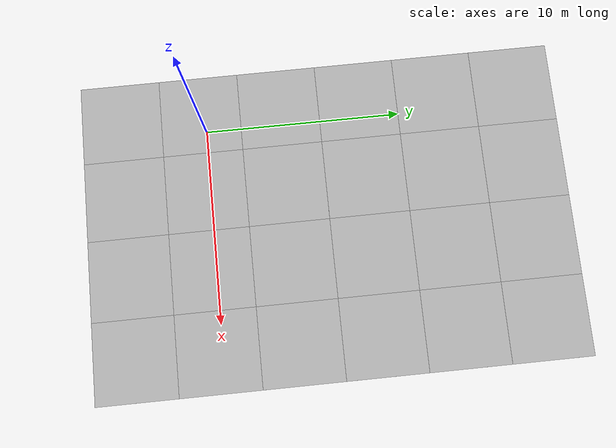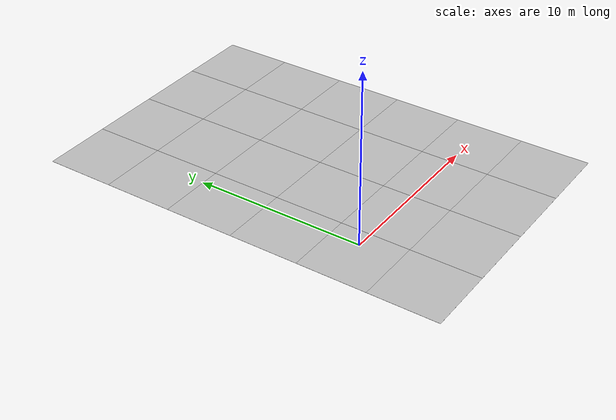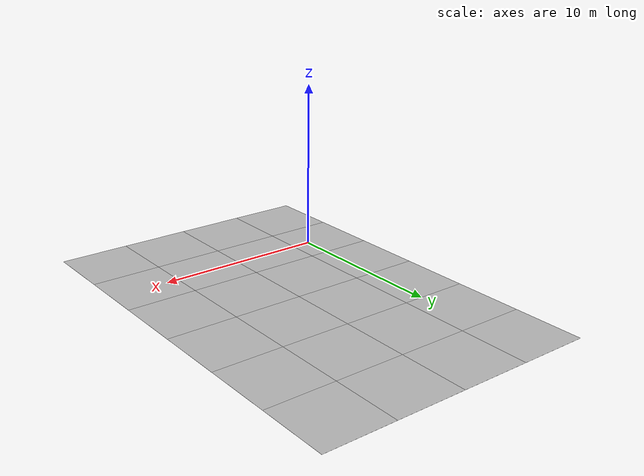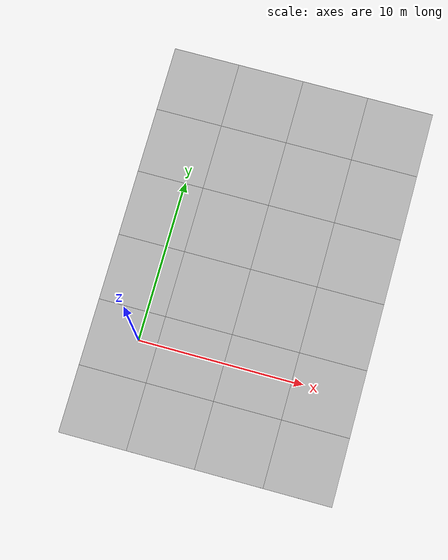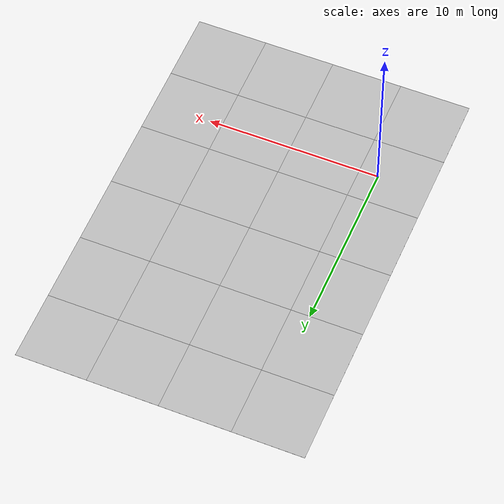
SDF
<sdf version="1.6">
 <world name="default">
  <light name="sun_light" type="directional">
   <pose>0 0 10 0 -0 0</pose>
   <diffuse>0.5 0.5 0.5 1</diffuse>
   <specular>0.1 0.1 0.1 1</specular>
   <direction>0.1 0.1 -0.9</direction>
   <attenuation>
    <range>20</range>
    <constant>0.5</constant>
    <linear>0.01</linear>
    <quadratic>0.001</quadratic>
   </attenuation>
  </light>
  <model name="Tile/0-0">
   <static>1</static>
   <link name="link">
    <collision name="collision">
     <geometry><plane><normal>0 0 1</normal><size>4.096 4.096</size></plane></geometry>
     <surface><friction><ode><mu>100</mu><mu2>50</mu2></ode></friction></surface>
    </collision>
    <visual name="visual">
     <cast_shadows>0</cast_shadows>
     <geometry><plane><normal>0 0 1</normal><size>4.096 4.096</size></plane></geometry>
     <material>
      <script>
       <uri>file://materials/scripts</uri>
       <uri>file://materials/textures</uri>
       <name>Tile/5eab350b8220ac9944dbdfa4ac3288c7c17e24c3bf5df0dfcf6173d64dae00a1</name>
      </script>
     </material>
    </visual>
   </link>
   <pose>-0.952 -4.351995000010415 0 0 -0 0</pose>
  </model>
  <model name="Tile/0-1">
   <static>1</static>
   <link name="link">
    <collision name="collision">
     <geometry><plane><normal>0 0 1</normal><size>4.096 4.096</size></plane></geometry>
     <surface><friction><ode><mu>100</mu><mu2>50</mu2></ode></friction></surface>
    </collision>
    <visual name="visual">
     <cast_shadows>0</cast_shadows>
     <geometry><plane><normal>0 0 1</normal><size>4.096 4.096</size></plane></geometry>
     <material>
      <script>
       <uri>file://materials/scripts</uri>
       <uri>file://materials/textures</uri>
       <name>Tile/fed8ceb758e9ae2ef714064cb33e8129fa80b4c62d279d0a538886c799653a61</name>
      </script>
     </material>
    </visual>
   </link>
   <pose>-0.952 -0.2559950000104152 0 0 -0 0</pose>
  </model>
  <model name="Tile/0-2">
   <static>1</static>
   <link name="link">
    <collision name="collision">
     <geometry><plane><normal>0 0 1</normal><size>4.096 4.096</size></plane></geometry>
     <surface><friction><ode><mu>100</mu><mu2>50</mu2></ode></friction></surface>
    </collision>
    <visual name="visual">
     <cast_shadows>0</cast_shadows>
     <geometry><plane><normal>0 0 1</normal><size>4.096 4.096</size></plane></geometry>
     <material>
      <script>
       <uri>file://materials/scripts</uri>
       <uri>file://materials/textures</uri>
       <name>Tile/5eab350b8220ac9944dbdfa4ac3288c7c17e24c3bf5df0dfcf6173d64dae00a1</name>
      </script>
     </material>
    </visual>
   </link>
   <pose>-0.952 3.840004999989585 0 0 -0 0</pose>
  </model>
  <model name="Tile/0-3">
   <static>1</static>
   <link name="link">
    <collision name="collision">
     <geometry><plane><normal>0 0 1</normal><size>4.096 4.096</size></plane></geometry>
     <surface><friction><ode><mu>100</mu><mu2>50</mu2></ode></friction></surface>
    </collision>
    <visual name="visual">
     <cast_shadows>0</cast_shadows>
     <geometry><plane><normal>0 0 1</normal><size>4.096 4.096</size></plane></geometry>
     <material>
      <script>
       <uri>file://materials/scripts</uri>
       <uri>file://materials/textures</uri>
       <name>Tile/5eab350b8220ac9944dbdfa4ac3288c7c17e24c3bf5df0dfcf6173d64dae00a1</name>
      </script>
     </material>
    </visual>
   </link>
   <pose>-0.952 7.936004999989585 0 0 -0 0</pose>
  </model>
  <model name="Tile/0-4">
   <static>1</static>
   <link name="link">
    <collision name="collision">
     <geometry><plane><normal>0 0 1</normal><size>4.096 4.096</size></plane></geometry>
     <surface><friction><ode><mu>100</mu><mu2>50</mu2></ode></friction></surface>
    </collision>
    <visual name="visual">
     <cast_shadows>0</cast_shadows>
     <geometry><plane><normal>0 0 1</normal><size>4.096 4.096</size></plane></geometry>
     <material>
      <script>
       <uri>file://materials/scripts</uri>
       <uri>file://materials/textures</uri>
       <name>Tile/5eab350b8220ac9944dbdfa4ac3288c7c17e24c3bf5df0dfcf6173d64dae00a1</name>
      </script>
     </material>
    </visual>
   </link>
   <pose>-0.952 12.032004999989583 0 0 -0 0</pose>
  </model>
  <model name="Tile/0-5">
   <static>1</static>
   <link name="link">
    <collision name="collision">
     <geometry><plane><normal>0 0 1</normal><size>4.096 4.096</size></plane></geometry>
     <surface><friction><ode><mu>100</mu><mu2>50</mu2></ode></friction></surface>
    </collision>
    <visual name="visual">
     <cast_shadows>0</cast_shadows>
     <geometry><plane><normal>0 0 1</normal><size>4.096 4.096</size></plane></geometry>
     <material>
      <script>
       <uri>file://materials/scripts</uri>
       <uri>file://materials/textures</uri>
       <name>Tile/5eab350b8220ac9944dbdfa4ac3288c7c17e24c3bf5df0dfcf6173d64dae00a1</name>
      </script>
     </material>
    </visual>
   </link>
   <pose>-0.952 16.128004999989585 0 0 -0 0</pose>
  </model>
  <model name="Tile/1-0">
   <static>1</static>
   <link name="link">
    <collision name="collision">
     <geometry><plane><normal>0 0 1</normal><size>4.096 4.096</size></plane></geometry>
     <surface><friction><ode><mu>100</mu><mu2>50</mu2></ode></friction></surface>
    </collision>
    <visual name="visual">
     <cast_shadows>0</cast_shadows>
     <geometry><plane><normal>0 0 1</normal><size>4.096 4.096</size></plane></geometry>
     <material>
      <script>
       <uri>file://materials/scripts</uri>
       <uri>file://materials/textures</uri>
       <name>Tile/80c9ac313d14950fa45937d7bab71c2548d8a7fa508af37890061cd94d0c8b30</name>
      </script>
     </material>
    </visual>
   </link>
   <pose>3.144 -4.351995000010415 0 0 -0 0</pose>
  </model>
  <model name="Tile/1-1">
   <static>1</static>
   <link name="link">
    <collision name="collision">
     <geometry><plane><normal>0 0 1</normal><size>4.096 4.096</size></plane></geometry>
     <surface><friction><ode><mu>100</mu><mu2>50</mu2></ode></friction></surface>
    </collision>
    <visual name="visual">
     <cast_shadows>0</cast_shadows>
     <geometry><plane><normal>0 0 1</normal><size>4.096 4.096</size></plane></geometry>
     <material>
      <script>
       <uri>file://materials/scripts</uri>
       <uri>file://materials/textures</uri>
       <name>Tile/779953579d50c1c52a462a438a54e390c2d343d3633d80fafb56ae08866e7013</name>
      </script>
     </material>
    </visual>
   </link>
   <pose>3.144 -0.2559950000104152 0 0 -0 0</pose>
  </model>
  <model name="Tile/1-2">
   <static>1</static>
   <link name="link">
    <collision name="collision">
     <geometry><plane><normal>0 0 1</normal><size>4.096 4.096</size></plane></geometry>
     <surface><friction><ode><mu>100</mu><mu2>50</mu2></ode></friction></surface>
    </collision>
    <visual name="visual">
     <cast_shadows>0</cast_shadows>
     <geometry><plane><normal>0 0 1</normal><size>4.096 4.096</size></plane></geometry>
     <material>
      <script>
       <uri>file://materials/scripts</uri>
       <uri>file://materials/textures</uri>
       <name>Tile/5eab350b8220ac9944dbdfa4ac3288c7c17e24c3bf5df0dfcf6173d64dae00a1</name>
      </script>
     </material>
    </visual>
   </link>
   <pose>3.144 3.840004999989585 0 0 -0 0</pose>
  </model>
  <model name="Tile/1-3">
   <static>1</static>
   <link name="link">
    <collision name="collision">
     <geometry><plane><normal>0 0 1</normal><size>4.096 4.096</size></plane></geometry>
     <surface><friction><ode><mu>100</mu><mu2>50</mu2></ode></friction></surface>
    </collision>
    <visual name="visual">
     <cast_shadows>0</cast_shadows>
     <geometry><plane><normal>0 0 1</normal><size>4.096 4.096</size></plane></geometry>
     <material>
      <script>
       <uri>file://materials/scripts</uri>
       <uri>file://materials/textures</uri>
       <name>Tile/78c6192153977c493e8e8cf1e5510c08c3a895f3ef0fc2eb406ff8d0e00aaa3d</name>
      </script>
     </material>
    </visual>
   </link>
   <pose>3.144 7.936004999989585 0 0 -0 0</pose>
  </model>
  <model name="Tile/1-4">
   <static>1</static>
   <link name="link">
    <collision name="collision">
     <geometry><plane><normal>0 0 1</normal><size>4.096 4.096</size></plane></geometry>
     <surface><friction><ode><mu>100</mu><mu2>50</mu2></ode></friction></surface>
    </collision>
    <visual name="visual">
     <cast_shadows>0</cast_shadows>
     <geometry><plane><normal>0 0 1</normal><size>4.096 4.096</size></plane></geometry>
     <material>
      <script>
       <uri>file://materials/scripts</uri>
       <uri>file://materials/textures</uri>
       <name>Tile/e2c312984eda9f9d6fd118285cbc715c9c527ee21140c240e35aadc51322324f</name>
      </script>
     </material>
    </visual>
   </link>
   <pose>3.144 12.032004999989583 0 0 -0 0</pose>
  </model>
  <model name="Tile/1-5">
   <static>1</static>
   <link name="link">
    <collision name="collision">
     <geometry><plane><normal>0 0 1</normal><size>4.096 4.096</size></plane></geometry>
     <surface><friction><ode><mu>100</mu><mu2>50</mu2></ode></friction></surface>
    </collision>
    <visual name="visual">
     <cast_shadows>0</cast_shadows>
     <geometry><plane><normal>0 0 1</normal><size>4.096 4.096</size></plane></geometry>
     <material>
      <script>
       <uri>file://materials/scripts</uri>
       <uri>file://materials/textures</uri>
       <name>Tile/5eab350b8220ac9944dbdfa4ac3288c7c17e24c3bf5df0dfcf6173d64dae00a1</name>
      </script>
     </material>
    </visual>
   </link>
   <pose>3.144 16.128004999989585 0 0 -0 0</pose>
  </model>
  <model name="Tile/2-0">
   <static>1</static>
   <link name="link">
    <collision name="collision">
     <geometry><plane><normal>0 0 1</normal><size>4.096 4.096</size></plane></geometry>
     <surface><friction><ode><mu>100</mu><mu2>50</mu2></ode></friction></surface>
    </collision>
    <visual name="visual">
     <cast_shadows>0</cast_shadows>
     <geometry><plane><normal>0 0 1</normal><size>4.096 4.096</size></plane></geometry>
     <material>
      <script>
       <uri>file://materials/scripts</uri>
       <uri>file://materials/textures</uri>
       <name>Tile/ec37ead0a48e41567a9845711afba1c48a59968617cc8ba52282ccf0dd1c8f93</name>
      </script>
     </material>
    </visual>
   </link>
   <pose>7.24 -4.351995000010415 0 0 -0 0</pose>
  </model>
  <model name="Tile/2-1">
   <static>1</static>
   <link name="link">
    <collision name="collision">
     <geometry><plane><normal>0 0 1</normal><size>4.096 4.096</size></plane></geometry>
     <surface><friction><ode><mu>100</mu><mu2>50</mu2></ode></friction></surface>
    </collision>
    <visual name="visual">
     <cast_shadows>0</cast_shadows>
     <geometry><plane><normal>0 0 1</normal><size>4.096 4.096</size></plane></geometry>
     <material>
      <script>
       <uri>file://materials/scripts</uri>
       <uri>file://materials/textures</uri>
       <name>Tile/eba263a1edb73555d051cc6ce74cc01796dcc9626f06cedf1253447478a77c70</name>
      </script>
     </material>
    </visual>
   </link>
   <pose>7.24 -0.2559950000104152 0 0 -0 0</pose>
  </model>
  <model name="Tile/2-2">
   <static>1</static>
   <link name="link">
    <collision name="collision">
     <geometry><plane><normal>0 0 1</normal><size>4.096 4.096</size></plane></geometry>
     <surface><friction><ode><mu>100</mu><mu2>50</mu2></ode></friction></surface>
    </collision>
    <visual name="visual">
     <cast_shadows>0</cast_shadows>
     <geometry><plane><normal>0 0 1</normal><size>4.096 4.096</size></plane></geometry>
     <material>
      <script>
       <uri>file://materials/scripts</uri>
       <uri>file://materials/textures</uri>
       <name>Tile/15e033ebabd2942a91eb05e16206df2f8a6c7e35bf94788f82abe14bb54e0f37</name>
      </script>
     </material>
    </visual>
   </link>
   <pose>7.24 3.840004999989585 0 0 -0 0</pose>
  </model>
  <model name="Tile/2-3">
   <static>1</static>
   <link name="link">
    <collision name="collision">
     <geometry><plane><normal>0 0 1</normal><size>4.096 4.096</size></plane></geometry>
     <surface><friction><ode><mu>100</mu><mu2>50</mu2></ode></friction></surface>
    </collision>
    <visual name="visual">
     <cast_shadows>0</cast_shadows>
     <geometry><plane><normal>0 0 1</normal><size>4.096 4.096</size></plane></geometry>
     <material>
      <script>
       <uri>file://materials/scripts</uri>
       <uri>file://materials/textures</uri>
       <name>Tile/2a85f88afed8bafbb9caf95114bead1ad8ab5266486e31519215ffdc75a5d5bb</name>
      </script>
     </material>
    </visual>
   </link>
   <pose>7.24 7.936004999989585 0 0 -0 0</pose>
  </model>
  <model name="Tile/2-4">
   <static>1</static>
   <link name="link">
    <collision name="collision">
     <geometry><plane><normal>0 0 1</normal><size>4.096 4.096</size></plane></geometry>
     <surface><friction><ode><mu>100</mu><mu2>50</mu2></ode></friction></surface>
    </collision>
    <visual name="visual">
     <cast_shadows>0</cast_shadows>
     <geometry><plane><normal>0 0 1</normal><size>4.096 4.096</size></plane></geometry>
     <material>
      <script>
       <uri>file://materials/scripts</uri>
       <uri>file://materials/textures</uri>
       <name>Tile/ef6991495462d2c2119d79b2becb67824d05bbd753897e6115c7134a660a4319</name>
      </script>
     </material>
    </visual>
   </link>
   <pose>7.24 12.032004999989583 0 0 -0 0</pose>
  </model>
  <model name="Tile/2-5">
   <static>1</static>
   <link name="link">
    <collision name="collision">
     <geometry><plane><normal>0 0 1</normal><size>4.096 4.096</size></plane></geometry>
     <surface><friction><ode><mu>100</mu><mu2>50</mu2></ode></friction></surface>
    </collision>
    <visual name="visual">
     <cast_shadows>0</cast_shadows>
     <geometry><plane><normal>0 0 1</normal><size>4.096 4.096</size></plane></geometry>
     <material>
      <script>
       <uri>file://materials/scripts</uri>
       <uri>file://materials/textures</uri>
       <name>Tile/5eab350b8220ac9944dbdfa4ac3288c7c17e24c3bf5df0dfcf6173d64dae00a1</name>
      </script>
     </material>
    </visual>
   </link>
   <pose>7.24 16.128004999989585 0 0 -0 0</pose>
  </model>
  <model name="Tile/3-0">
   <static>1</static>
   <link name="link">
    <collision name="collision">
     <geometry><plane><normal>0 0 1</normal><size>4.096 4.096</size></plane></geometry>
     <surface><friction><ode><mu>100</mu><mu2>50</mu2></ode></friction></surface>
    </collision>
    <visual name="visual">
     <cast_shadows>0</cast_shadows>
     <geometry><plane><normal>0 0 1</normal><size>4.096 4.096</size></plane></geometry>
     <material>
      <script>
       <uri>file://materials/scripts</uri>
       <uri>file://materials/textures</uri>
       <name>Tile/5eab350b8220ac9944dbdfa4ac3288c7c17e24c3bf5df0dfcf6173d64dae00a1</name>
      </script>
     </material>
    </visual>
   </link>
   <pose>11.336 -4.351995000010415 0 0 -0 0</pose>
  </model>
  <model name="Tile/3-1">
   <static>1</static>
   <link name="link">
    <collision name="collision">
     <geometry><plane><normal>0 0 1</normal><size>4.096 4.096</size></plane></geometry>
     <surface><friction><ode><mu>100</mu><mu2>50</mu2></ode></friction></surface>
    </collision>
    <visual name="visual">
     <cast_shadows>0</cast_shadows>
     <geometry><plane><normal>0 0 1</normal><size>4.096 4.096</size></plane></geometry>
     <material>
      <script>
       <uri>file://materials/scripts</uri>
       <uri>file://materials/textures</uri>
       <name>Tile/5eab350b8220ac9944dbdfa4ac3288c7c17e24c3bf5df0dfcf6173d64dae00a1</name>
      </script>
     </material>
    </visual>
   </link>
   <pose>11.336 -0.2559950000104152 0 0 -0 0</pose>
  </model>
  <model name="Tile/3-2">
   <static>1</static>
   <link name="link">
    <collision name="collision">
     <geometry><plane><normal>0 0 1</normal><size>4.096 4.096</size></plane></geometry>
     <surface><friction><ode><mu>100</mu><mu2>50</mu2></ode></friction></surface>
    </collision>
    <visual name="visual">
     <cast_shadows>0</cast_shadows>
     <geometry><plane><normal>0 0 1</normal><size>4.096 4.096</size></plane></geometry>
     <material>
      <script>
       <uri>file://materials/scripts</uri>
       <uri>file://materials/textures</uri>
       <name>Tile/5eab350b8220ac9944dbdfa4ac3288c7c17e24c3bf5df0dfcf6173d64dae00a1</name>
      </script>
     </material>
    </visual>
   </link>
   <pose>11.336 3.840004999989585 0 0 -0 0</pose>
  </model>
  <model name="Tile/3-3">
   <static>1</static>
   <link name="link">
    <collision name="collision">
     <geometry><plane><normal>0 0 1</normal><size>4.096 4.096</size></plane></geometry>
     <surface><friction><ode><mu>100</mu><mu2>50</mu2></ode></friction></surface>
    </collision>
    <visual name="visual">
     <cast_shadows>0</cast_shadows>
     <geometry><plane><normal>0 0 1</normal><size>4.096 4.096</size></plane></geometry>
     <material>
      <script>
       <uri>file://materials/scripts</uri>
       <uri>file://materials/textures</uri>
       <name>Tile/5eab350b8220ac9944dbdfa4ac3288c7c17e24c3bf5df0dfcf6173d64dae00a1</name>
      </script>
     </material>
    </visual>
   </link>
   <pose>11.336 7.936004999989585 0 0 -0 0</pose>
  </model>
  <model name="Tile/3-4">
   <static>1</static>
   <link name="link">
    <collision name="collision">
     <geometry><plane><normal>0 0 1</normal><size>4.096 4.096</size></plane></geometry>
     <surface><friction><ode><mu>100</mu><mu2>50</mu2></ode></friction></surface>
    </collision>
    <visual name="visual">
     <cast_shadows>0</cast_shadows>
     <geometry><plane><normal>0 0 1</normal><size>4.096 4.096</size></plane></geometry>
     <material>
      <script>
       <uri>file://materials/scripts</uri>
       <uri>file://materials/textures</uri>
       <name>Tile/5eab350b8220ac9944dbdfa4ac3288c7c17e24c3bf5df0dfcf6173d64dae00a1</name>
      </script>
     </material>
    </visual>
   </link>
   <pose>11.336 12.032004999989583 0 0 -0 0</pose>
  </model>
  <model name="Tile/3-5">
   <static>1</static>
   <link name="link">
    <collision name="collision">
     <geometry><plane><normal>0 0 1</normal><size>4.096 4.096</size></plane></geometry>
     <surface><friction><ode><mu>100</mu><mu2>50</mu2></ode></friction></surface>
    </collision>
    <visual name="visual">
     <cast_shadows>0</cast_shadows>
     <geometry><plane><normal>0 0 1</normal><size>4.096 4.096</size></plane></geometry>
     <material>
      <script>
       <uri>file://materials/scripts</uri>
       <uri>file://materials/textures</uri>
       <name>Tile/5eab350b8220ac9944dbdfa4ac3288c7c17e24c3bf5df0dfcf6173d64dae00a1</name>
      </script>
     </material>
    </visual>
   </link>
   <pose>11.336 16.128004999989585 0 0 -0 0</pose>
  </model>
 </world>
</sdf>
